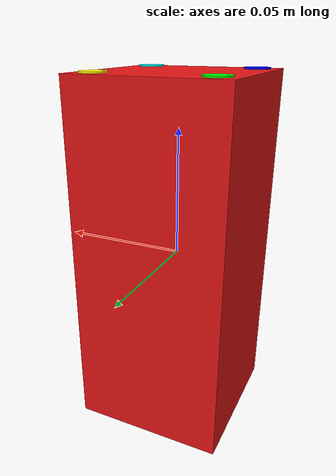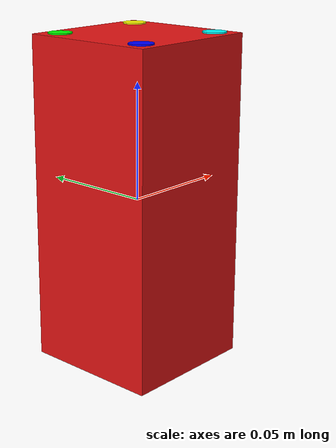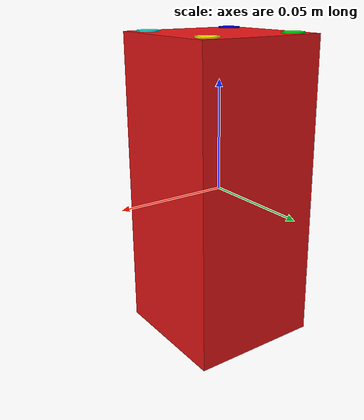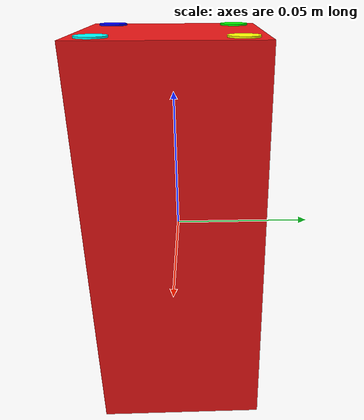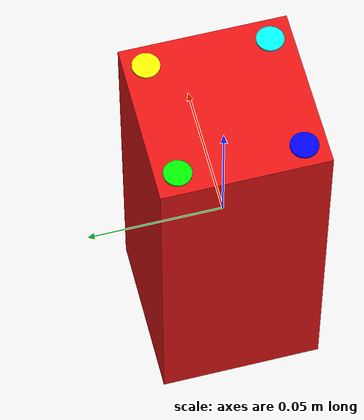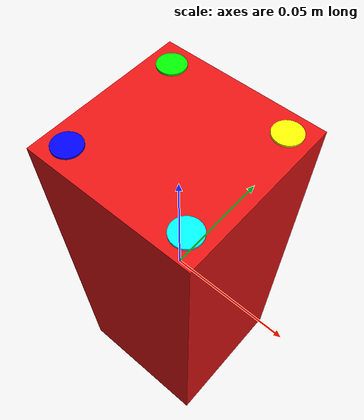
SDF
<?xml version="1.0"?>
<sdf version="1.7">
  <model name="assignment_object">
    <static>false</static>
    <link name="object">
      <inertial>
        <mass>0.08</mass>
        <inertia>
          <ixx>0.000155</ixx>
          <iyy>0.000155</iyy>
          <izz>0.000048</izz>
        </inertia>
      </inertial>
      <collision name="collision">
        <geometry>
          <box>
            <size>0.06 0.06 0.14</size>
          </box>
        </geometry>
        <surface>
          <friction>
            <ode>
              <mu>3.0</mu>
              <mu2>3.0</mu2>
            </ode>
            <bullet>
              <friction>3.0</friction>
              <friction2>3.0</friction2>
            </bullet>
          </friction>
          <contact>
            <ode>
              <kp>500000</kp>
              <kd>5</kd>
              <max_vel>0.02</max_vel>
              <min_depth>0.002</min_depth>
            </ode>
          </contact>
        </surface>
      </collision>
      <visual name="visual">
        <geometry>
          <box>
            <size>0.06 0.06 0.14</size>
          </box>
        </geometry>
        <material>
          <ambient>0.60 0.04 0.04 1</ambient>
          <diffuse>0.90 0.08 0.08 1</diffuse>
          <specular>0.15 0.15 0.15 1</specular>
        </material>
      </visual>
      <visual name="top_dot_yellow">
        <pose>0.022 0.022 0.0703 0 0 0</pose>
        <cast_shadows>false</cast_shadows>
        <geometry>
          <cylinder>
            <radius>0.005</radius>
            <length>0.0006</length>
          </cylinder>
        </geometry>
        <material>
          <ambient>1 1 0 1</ambient>
          <diffuse>1 1 0 1</diffuse>
          <specular>0 0 0 1</specular>
        </material>
      </visual>
      <visual name="top_dot_green">
        <pose>-0.022 0.022 0.0703 0 0 0</pose>
        <cast_shadows>false</cast_shadows>
        <geometry>
          <cylinder>
            <radius>0.005</radius>
            <length>0.0006</length>
          </cylinder>
        </geometry>
        <material>
          <ambient>0 1 0 1</ambient>
          <diffuse>0 1 0 1</diffuse>
          <specular>0 0 0 1</specular>
        </material>
      </visual>
      <visual name="top_dot_blue">
        <pose>-0.022 -0.022 0.0703 0 0 0</pose>
        <cast_shadows>false</cast_shadows>
        <geometry>
          <cylinder>
            <radius>0.005</radius>
            <length>0.0006</length>
          </cylinder>
        </geometry>
        <material>
          <ambient>0 0 1 1</ambient>
          <diffuse>0 0 1 1</diffuse>
          <specular>0 0 0 1</specular>
        </material>
      </visual>
      <visual name="top_dot_cyan">
        <pose>0.022 -0.022 0.0703 0 0 0</pose>
        <cast_shadows>false</cast_shadows>
        <geometry>
          <cylinder>
            <radius>0.005</radius>
            <length>0.0006</length>
          </cylinder>
        </geometry>
        <material>
          <ambient>0 1 1 1</ambient>
          <diffuse>0 1 1 1</diffuse>
          <specular>0 0 0 1</specular>
        </material>
      </visual>
    </link>
  </model>
</sdf>
